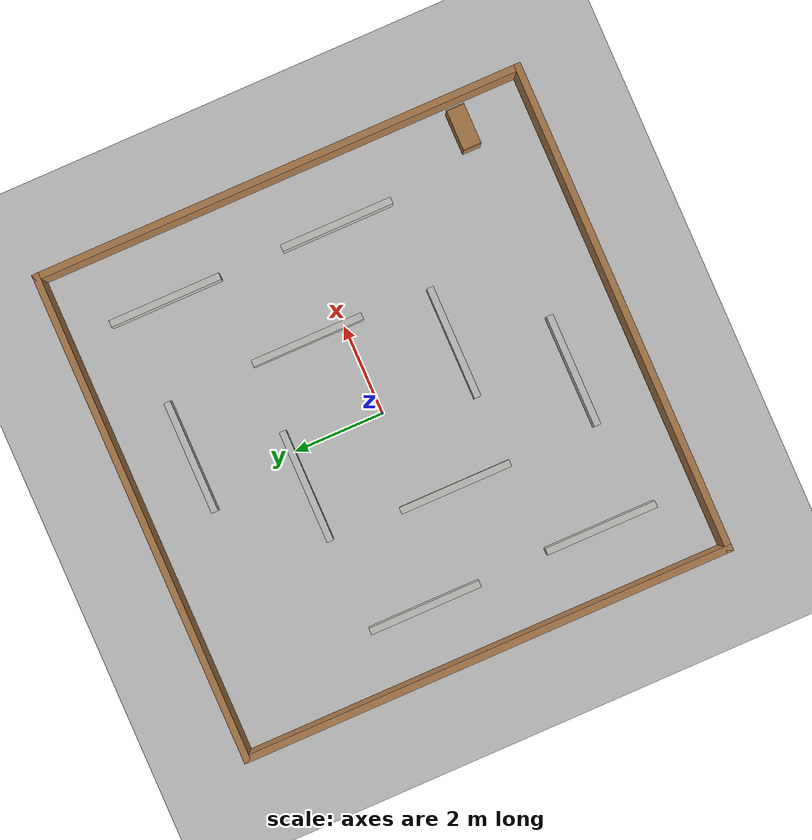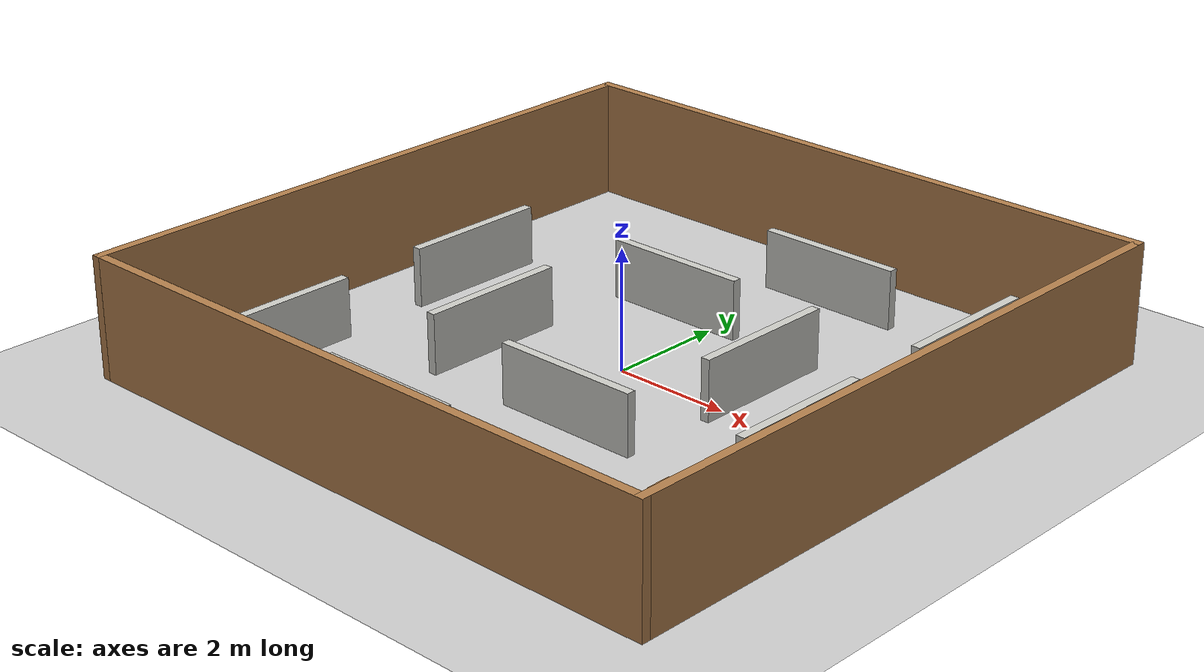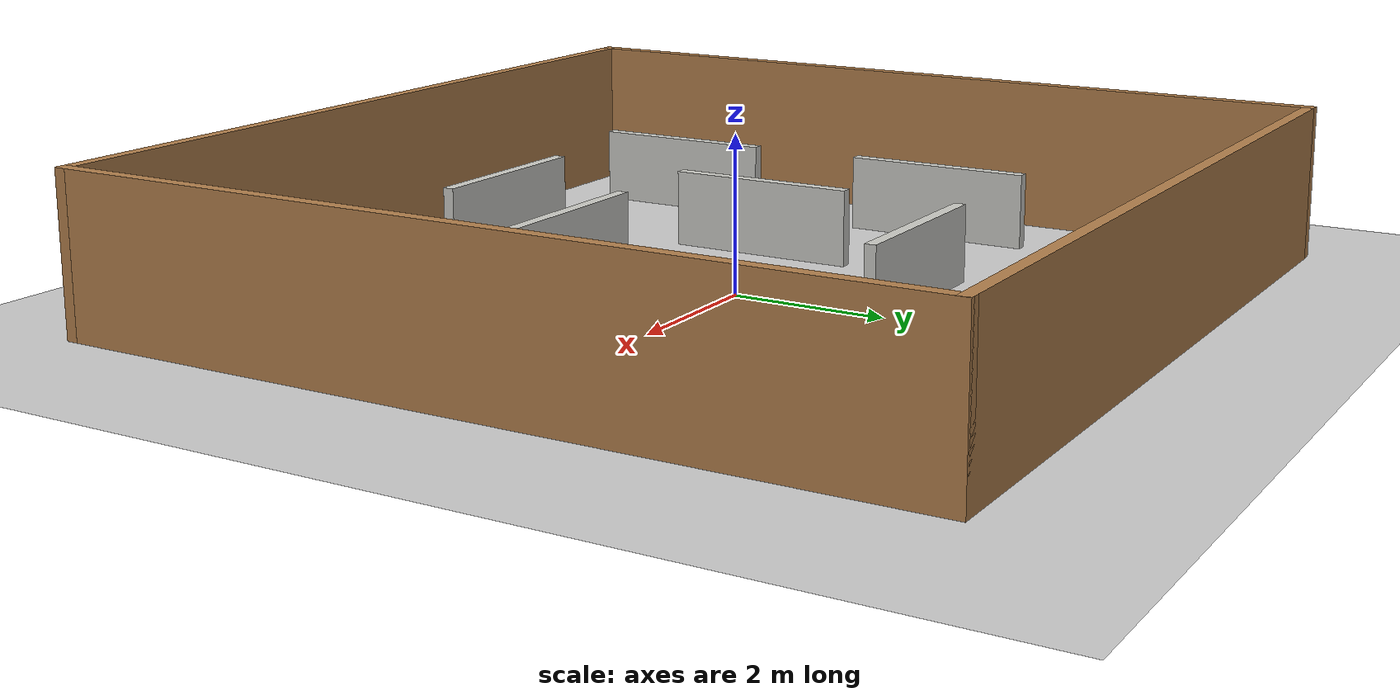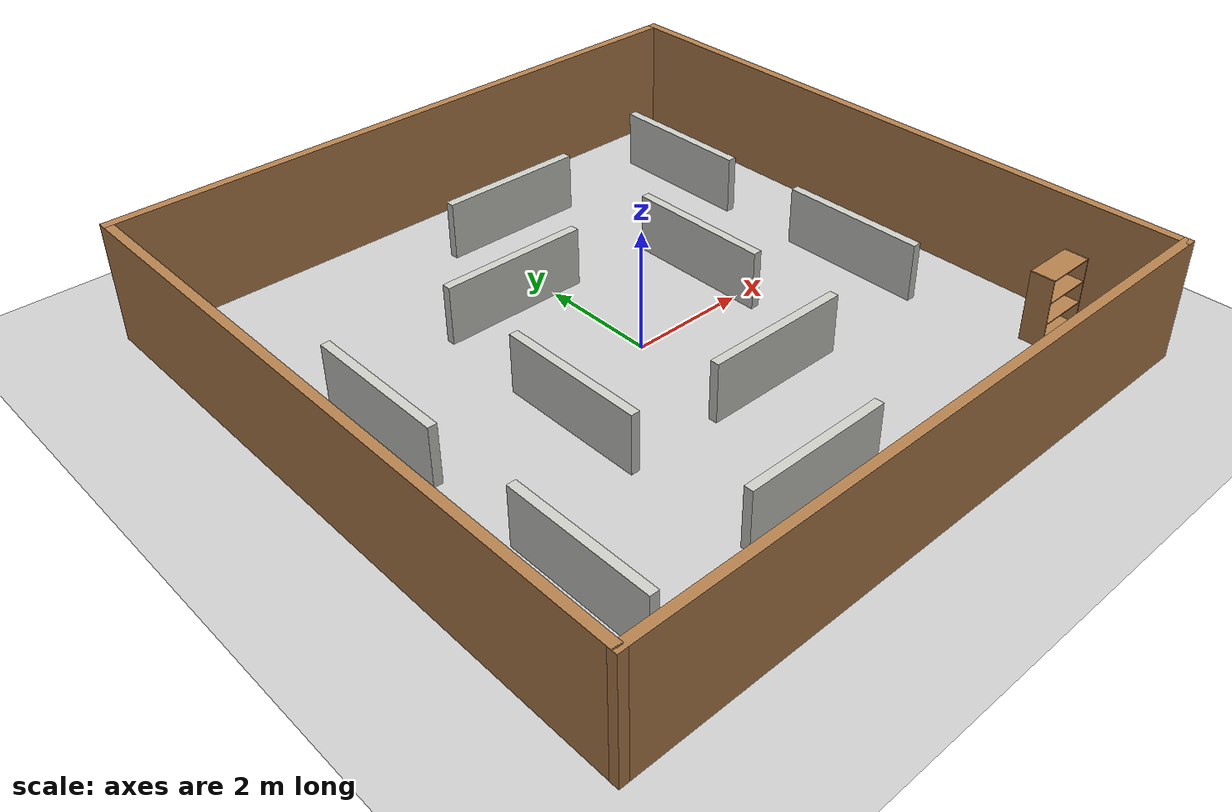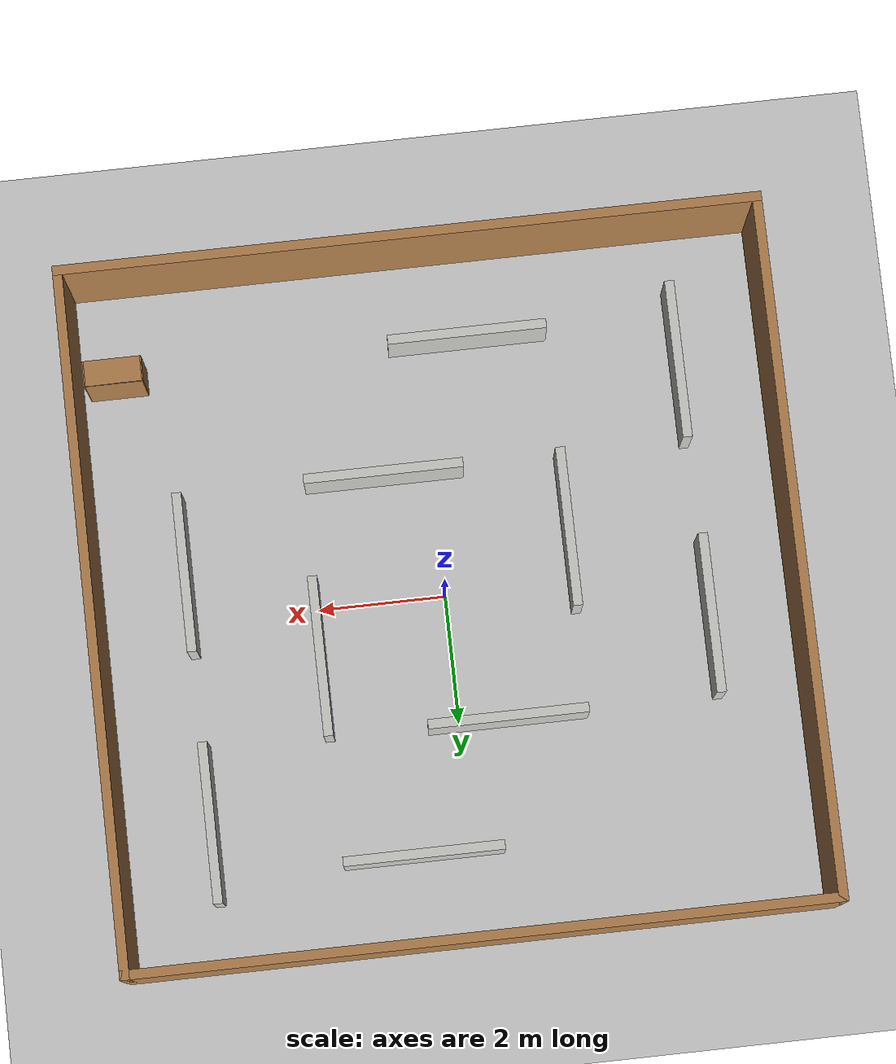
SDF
<sdf version="1.7">
 <world name="default">
  <light name="sun" type="directional">
   <pose>0 0 10 0 -0 0</pose>
   <diffuse>0.8 0.8 0.8 1</diffuse>
   <specular>0.1 0.1 0.1 1</specular>
   <attenuation>
    <range>1000</range>
    <constant>0.9</constant>
    <linear>0.01</linear>
    <quadratic>0.001</quadratic>
   </attenuation>
   <direction>-0.5 0.5 -1</direction>
   <spot><inner_angle>0</inner_angle><outer_angle>0</outer_angle><falloff>0</falloff></spot>
  </light>
  <model name="ground_plane">
   <static>1</static>
   <link name="link">
    <collision name="collision">
     <geometry><plane><normal>0 0 1</normal><size>100 100</size></plane></geometry>
     <surface><friction><ode><mu>100</mu><mu2>50</mu2></ode></friction></surface>
    </collision>
    <visual name="visual">
     <cast_shadows>0</cast_shadows>
     <geometry><plane><normal>0 0 1</normal><size>100 100</size></plane></geometry>
     <material>
      <script><uri>file://media/materials/scripts/gazebo.material</uri><name>Gazebo/Grey</name></script>
     </material>
    </visual>
   </link>
  </model>
  <gravity>0 0 -9.8</gravity>
  <magnetic_field>6e-06 2.3e-05 -4.2e-05</magnetic_field>
  <atmosphere type="adiabatic"/>
  <physics name="default_physics" default="0" type="ode">
   <max_step_size>0.001</max_step_size>
   <real_time_factor>1</real_time_factor>
   <real_time_update_rate>1000</real_time_update_rate>
  </physics>
  <scene><ambient>0.4 0.4 0.4 1</ambient><background>0.7 0.7 0.7 1</background><shadows>1</shadows></scene>
  <spherical_coordinates>
   <surface_model>EARTH_WGS84</surface_model>
   <latitude_deg>0</latitude_deg>
   <longitude_deg>0</longitude_deg>
   <elevation>0</elevation>
   <heading_deg>0</heading_deg>
  </spherical_coordinates>
  <model name="bookshelf">
   <static>1</static>
   <link name="link">
    <inertial><mass>1</mass></inertial>
    <collision name="back">
     <pose>0 0.005 0.6 0 -0 0</pose>
     <geometry><box><size>0.9 0.01 1.2</size></box></geometry>
    </collision>
    <visual name="visual1">
     <pose>0 0.005 0.6 0 -0 0</pose>
     <geometry><box><size>0.9 0.01 1.2</size></box></geometry>
     <material>
      <script><uri>file://media/materials/scripts/gazebo.material</uri><name>Gazebo/Wood</name></script>
     </material>
    </visual>
    <collision name="left_side">
     <pose>0.45 -0.195 0.6 0 -0 0</pose>
     <geometry><box><size>0.02 0.4 1.2</size></box></geometry>
    </collision>
    <visual name="visual2">
     <pose>0.45 -0.195 0.6 0 -0 0</pose>
     <geometry><box><size>0.02 0.4 1.2</size></box></geometry>
     <material>
      <script><uri>file://media/materials/scripts/gazebo.material</uri><name>Gazebo/Wood</name></script>
     </material>
    </visual>
    <collision name="right_side">
     <pose>-0.45 -0.195 0.6 0 -0 0</pose>
     <geometry><box><size>0.02 0.4 1.2</size></box></geometry>
    </collision>
    <visual name="visual3">
     <pose>-0.45 -0.195 0.6 0 -0 0</pose>
     <geometry><box><size>0.02 0.4 1.2</size></box></geometry>
     <material>
      <script><uri>file://media/materials/scripts/gazebo.material</uri><name>Gazebo/Wood</name></script>
     </material>
    </visual>
    <collision name="bottom">
     <pose>0 -0.195 0.03 0 -0 0</pose>
     <geometry><box><size>0.88 0.4 0.06</size></box></geometry>
    </collision>
    <visual name="visual4">
     <pose>0 -0.195 0.03 0 -0 0</pose>
     <geometry><box><size>0.88 0.4 0.06</size></box></geometry>
     <material>
      <script><uri>file://media/materials/scripts/gazebo.material</uri><name>Gazebo/Wood</name></script>
     </material>
    </visual>
    <collision name="top">
     <pose>0 -0.195 1.19 0 -0 0</pose>
     <geometry><box><size>0.88 0.4 0.02</size></box></geometry>
    </collision>
    <visual name="visual5">
     <pose>0 -0.195 1.19 0 -0 0</pose>
     <geometry><box><size>0.88 0.4 0.02</size></box></geometry>
     <material>
      <script><uri>file://media/materials/scripts/gazebo.material</uri><name>Gazebo/Wood</name></script>
     </material>
    </visual>
    <collision name="low_shelf">
     <pose>0 -0.195 0.43 0 -0 0</pose>
     <geometry><box><size>0.88 0.4 0.02</size></box></geometry>
    </collision>
    <visual name="visual6">
     <pose>0 -0.195 0.43 0 -0 0</pose>
     <geometry><box><size>0.88 0.4 0.02</size></box></geometry>
     <material>
      <script><uri>file://media/materials/scripts/gazebo.material</uri><name>Gazebo/Wood</name></script>
     </material>
    </visual>
    <collision name="high_shelf">
     <pose>0 -0.195 0.8 0 -0 0</pose>
     <geometry><box><size>0.88 0.4 0.02</size></box></geometry>
    </collision>
    <visual name="visual7">
     <pose>0 -0.195 0.8 0 -0 0</pose>
     <geometry><box><size>0.88 0.4 0.02</size></box></geometry>
     <material>
      <script><uri>file://media/materials/scripts/gazebo.material</uri><name>Gazebo/Wood</name></script>
     </material>
    </visual>
   </link>
   <pose>4.78412 -3.73836 0 0 -0 0</pose>
  </model>
  <model name="box">
   <link name="Wall_11_clone_0_clone_0">
    <pose>-0.755578 2.06366 0 0 -0 0</pose>
    <visual name="Wall_11_Visual">
     <pose>0 0 0.5 0 -0 0</pose>
     <geometry><box><size>2.5 0.15 1</size></box></geometry>
     <material>
      <script><uri>file://media/materials/scripts/gazebo.material</uri><name>Gazebo/CeilingTiled</name></script>
      <ambient>1 1 1 1</ambient>
      <diffuse>1 1 1 1</diffuse>
      <specular>0 0 0 1</specular>
      <emissive>0 0 0 1</emissive>
      <shader type="pixel"/>
     </material>
     <meta><layer>0</layer></meta>
    </visual>
    <collision name="Wall_11_Collision">
     <pose>0 0 0.5 0 -0 0</pose>
     <geometry><box><size>2.5 0.15 1</size></box></geometry>
     <surface>
      <friction>
       <ode><mu>1</mu><mu2>1</mu2><fdir1>0 0 0</fdir1><slip1>0</slip1><slip2>0</slip2></ode>
       <torsional>
        <coefficient>1</coefficient>
        <patch_radius>0</patch_radius>
        <surface_radius>0</surface_radius>
        <use_patch_radius>1</use_patch_radius>
        <ode><slip>0</slip></ode>
       </torsional>
      </friction>
      <bounce><restitution_coefficient>0</restitution_coefficient><threshold>1e+06</threshold></bounce>
      <contact>
       <collide_without_contact>0</collide_without_contact>
       <collide_without_contact_bitmask>1</collide_without_contact_bitmask>
       <collide_bitmask>1</collide_bitmask>
       <ode>
        <soft_cfm>0</soft_cfm>
        <soft_erp>0.2</soft_erp>
        <kp>1e+13</kp>
        <kd>1</kd>
        <max_vel>0.01</max_vel>
        <min_depth>0</min_depth>
       </ode>
       <bullet>
        <split_impulse>1</split_impulse>
        <split_impulse_penetration_threshold>-0.01</split_impulse_penetration_threshold>
        <soft_cfm>0</soft_cfm>
        <soft_erp>0.2</soft_erp>
        <kp>1e+13</kp>
        <kd>1</kd>
       </bullet>
      </contact>
     </surface>
    </collision>
   </link>
   <link name="Wall_11_clone_0_clone_0_clone">
    <pose>-0.773416 -4.00743 0 0 -0 0</pose>
    <visual name="Wall_11_Visual">
     <pose>0 0 0.5 0 -0 0</pose>
     <geometry><box><size>2.5 0.15 1</size></box></geometry>
     <material>
      <script><uri>file://media/materials/scripts/gazebo.material</uri><name>Gazebo/CeilingTiled</name></script>
      <ambient>1 1 1 1</ambient>
      <diffuse>1 1 1 1</diffuse>
      <specular>0 0 0 1</specular>
      <emissive>0 0 0 1</emissive>
      <shader type="pixel"/>
     </material>
     <meta><layer>0</layer></meta>
    </visual>
    <collision name="Wall_11_Collision">
     <pose>0 0 0.5 0 -0 0</pose>
     <geometry><box><size>2.5 0.15 1</size></box></geometry>
     <surface>
      <friction>
       <ode><mu>1</mu><mu2>1</mu2><fdir1>0 0 0</fdir1><slip1>0</slip1><slip2>0</slip2></ode>
       <torsional>
        <coefficient>1</coefficient>
        <patch_radius>0</patch_radius>
        <surface_radius>0</surface_radius>
        <use_patch_radius>1</use_patch_radius>
        <ode><slip>0</slip></ode>
       </torsional>
      </friction>
      <bounce><restitution_coefficient>0</restitution_coefficient><threshold>1e+06</threshold></bounce>
      <contact>
       <collide_without_contact>0</collide_without_contact>
       <collide_without_contact_bitmask>1</collide_without_contact_bitmask>
       <collide_bitmask>1</collide_bitmask>
       <ode>
        <soft_cfm>0</soft_cfm>
        <soft_erp>0.2</soft_erp>
        <kp>1e+13</kp>
        <kd>1</kd>
        <max_vel>0.01</max_vel>
        <min_depth>0</min_depth>
       </ode>
       <bullet>
        <split_impulse>1</split_impulse>
        <split_impulse_penetration_threshold>-0.01</split_impulse_penetration_threshold>
        <soft_cfm>0</soft_cfm>
        <soft_erp>0.2</soft_erp>
        <kp>1e+13</kp>
        <kd>1</kd>
       </bullet>
      </contact>
     </surface>
    </collision>
   </link>
   <link name="Wall_11_clone_0_clone_0_clone_0">
    <pose>0.765555 4.02606 0 0 -0 0</pose>
    <visual name="Wall_11_Visual">
     <pose>0 0 0.5 0 -0 0</pose>
     <geometry><box><size>2.5 0.15 1</size></box></geometry>
     <material>
      <script><uri>file://media/materials/scripts/gazebo.material</uri><name>Gazebo/CeilingTiled</name></script>
      <ambient>1 1 1 1</ambient>
      <diffuse>1 1 1 1</diffuse>
      <specular>0 0 0 1</specular>
      <emissive>0 0 0 1</emissive>
      <shader type="pixel"/>
     </material>
     <meta><layer>0</layer></meta>
    </visual>
    <collision name="Wall_11_Collision">
     <pose>0 0 0.5 0 -0 0</pose>
     <geometry><box><size>2.5 0.15 1</size></box></geometry>
     <surface>
      <friction>
       <ode><mu>1</mu><mu2>1</mu2><fdir1>0 0 0</fdir1><slip1>0</slip1><slip2>0</slip2></ode>
       <torsional>
        <coefficient>1</coefficient>
        <patch_radius>0</patch_radius>
        <surface_radius>0</surface_radius>
        <use_patch_radius>1</use_patch_radius>
        <ode><slip>0</slip></ode>
       </torsional>
      </friction>
      <bounce><restitution_coefficient>0</restitution_coefficient><threshold>1e+06</threshold></bounce>
      <contact>
       <collide_without_contact>0</collide_without_contact>
       <collide_without_contact_bitmask>1</collide_without_contact_bitmask>
       <collide_bitmask>1</collide_bitmask>
       <ode>
        <soft_cfm>0</soft_cfm>
        <soft_erp>0.2</soft_erp>
        <kp>1e+13</kp>
        <kd>1</kd>
        <max_vel>0.01</max_vel>
        <min_depth>0</min_depth>
       </ode>
       <bullet>
        <split_impulse>1</split_impulse>
        <split_impulse_penetration_threshold>-0.01</split_impulse_penetration_threshold>
        <soft_cfm>0</soft_cfm>
        <soft_erp>0.2</soft_erp>
        <kp>1e+13</kp>
        <kd>1</kd>
       </bullet>
      </contact>
     </surface>
    </collision>
   </link>
   <link name="Wall_11_clone_0_clone_clone">
    <pose>0.762253 -1.95348 0 0 -0 0</pose>
    <visual name="Wall_11_Visual">
     <pose>0 0 0.5 0 -0 0</pose>
     <geometry><box><size>2.5 0.15 1</size></box></geometry>
     <material>
      <script><uri>file://media/materials/scripts/gazebo.material</uri><name>Gazebo/CeilingTiled</name></script>
      <ambient>1 1 1 1</ambient>
      <diffuse>1 1 1 1</diffuse>
      <specular>0 0 0 1</specular>
      <emissive>0 0 0 1</emissive>
      <shader type="pixel"/>
     </material>
     <meta><layer>0</layer></meta>
    </visual>
    <collision name="Wall_11_Collision">
     <pose>0 0 0.5 0 -0 0</pose>
     <geometry><box><size>2.5 0.15 1</size></box></geometry>
     <surface>
      <friction>
       <ode><mu>1</mu><mu2>1</mu2><fdir1>0 0 0</fdir1><slip1>0</slip1><slip2>0</slip2></ode>
       <torsional>
        <coefficient>1</coefficient>
        <patch_radius>0</patch_radius>
        <surface_radius>0</surface_radius>
        <use_patch_radius>1</use_patch_radius>
        <ode><slip>0</slip></ode>
       </torsional>
      </friction>
      <bounce><restitution_coefficient>0</restitution_coefficient><threshold>1e+06</threshold></bounce>
      <contact>
       <collide_without_contact>0</collide_without_contact>
       <collide_without_contact_bitmask>1</collide_without_contact_bitmask>
       <collide_bitmask>1</collide_bitmask>
       <ode>
        <soft_cfm>0</soft_cfm>
        <soft_erp>0.2</soft_erp>
        <kp>1e+13</kp>
        <kd>1</kd>
        <max_vel>0.01</max_vel>
        <min_depth>0</min_depth>
       </ode>
       <bullet>
        <split_impulse>1</split_impulse>
        <split_impulse_penetration_threshold>-0.01</split_impulse_penetration_threshold>
        <soft_cfm>0</soft_cfm>
        <soft_erp>0.2</soft_erp>
        <kp>1e+13</kp>
        <kd>1</kd>
       </bullet>
      </contact>
     </surface>
    </collision>
   </link>
   <link name="Wall_29_clone_clone_clone_clone">
    <pose>-2.01461 -0.7757 0 0 -0 1.5708</pose>
    <inertial>
     <mass>1</mass>
     <inertia><ixx>1</ixx><ixy>0</ixy><ixz>0</ixz><iyy>1</iyy><iyz>0</iyz><izz>1</izz></inertia>
    </inertial>
    <visual name="Wall_29_Visual">
     <pose>0 0 0.5 0 -0 0</pose>
     <geometry><box><size>2.5 0.15 1</size></box></geometry>
     <material>
      <script><uri>file://media/materials/scripts/gazebo.material</uri><name>Gazebo/CeilingTiled</name></script>
      <ambient>1 1 1 1</ambient>
      <diffuse>1 1 1 1</diffuse>
      <specular>0 0 0 1</specular>
      <emissive>0 0 0 1</emissive>
      <shader type="pixel"><normal_map>__default__</normal_map></shader>
     </material>
     <meta><layer>0</layer></meta>
    </visual>
    <collision name="Wall_29_Collision">
     <pose>0 0 0.5 0 -0 0</pose>
     <geometry><box><size>2.5 0.15 1</size></box></geometry>
     <surface>
      <friction>
       <ode><mu>1</mu><mu2>1</mu2><fdir1>0 0 0</fdir1><slip1>0</slip1><slip2>0</slip2></ode>
       <torsional>
        <coefficient>1</coefficient>
        <patch_radius>0</patch_radius>
        <surface_radius>0</surface_radius>
        <use_patch_radius>1</use_patch_radius>
        <ode><slip>0</slip></ode>
       </torsional>
      </friction>
      <bounce><restitution_coefficient>0</restitution_coefficient><threshold>1e+06</threshold></bounce>
      <contact>
       <collide_without_contact>0</collide_without_contact>
       <collide_without_contact_bitmask>1</collide_without_contact_bitmask>
       <collide_bitmask>1</collide_bitmask>
       <ode>
        <soft_cfm>0</soft_cfm>
        <soft_erp>0.2</soft_erp>
        <kp>1e+13</kp>
        <kd>1</kd>
        <max_vel>0.01</max_vel>
        <min_depth>0</min_depth>
       </ode>
       <bullet>
        <split_impulse>1</split_impulse>
        <split_impulse_penetration_threshold>-0.01</split_impulse_penetration_threshold>
        <soft_cfm>0</soft_cfm>
        <soft_erp>0.2</soft_erp>
        <kp>1e+13</kp>
        <kd>1</kd>
       </bullet>
      </contact>
     </surface>
    </collision>
   </link>
   <link name="Wall_29_clone_clone_clone_clone_clone">
    <pose>2.03476 0.824469 0 0 -0 1.5708</pose>
    <inertial>
     <mass>1</mass>
     <inertia><ixx>1</ixx><ixy>0</ixy><ixz>0</ixz><iyy>1</iyy><iyz>0</iyz><izz>1</izz></inertia>
    </inertial>
    <visual name="Wall_29_Visual">
     <pose>0 0 0.5 0 -0 0</pose>
     <geometry><box><size>2.5 0.15 1</size></box></geometry>
     <material>
      <script><uri>file://media/materials/scripts/gazebo.material</uri><name>Gazebo/CeilingTiled</name></script>
      <ambient>1 1 1 1</ambient>
      <diffuse>1 1 1 1</diffuse>
      <specular>0 0 0 1</specular>
      <emissive>0 0 0 1</emissive>
      <shader type="pixel"><normal_map>__default__</normal_map></shader>
     </material>
     <meta><layer>0</layer></meta>
    </visual>
    <collision name="Wall_29_Collision">
     <pose>0 0 0.5 0 -0 0</pose>
     <geometry><box><size>2.5 0.15 1</size></box></geometry>
     <surface>
      <friction>
       <ode><mu>1</mu><mu2>1</mu2><fdir1>0 0 0</fdir1><slip1>0</slip1><slip2>0</slip2></ode>
       <torsional>
        <coefficient>1</coefficient>
        <patch_radius>0</patch_radius>
        <surface_radius>0</surface_radius>
        <use_patch_radius>1</use_patch_radius>
        <ode><slip>0</slip></ode>
       </torsional>
      </friction>
      <bounce><restitution_coefficient>0</restitution_coefficient><threshold>1e+06</threshold></bounce>
      <contact>
       <collide_without_contact>0</collide_without_contact>
       <collide_without_contact_bitmask>1</collide_without_contact_bitmask>
       <collide_bitmask>1</collide_bitmask>
       <ode>
        <soft_cfm>0</soft_cfm>
        <soft_erp>0.2</soft_erp>
        <kp>1e+13</kp>
        <kd>1</kd>
        <max_vel>0.01</max_vel>
        <min_depth>0</min_depth>
       </ode>
       <bullet>
        <split_impulse>1</split_impulse>
        <split_impulse_penetration_threshold>-0.01</split_impulse_penetration_threshold>
        <soft_cfm>0</soft_cfm>
        <soft_erp>0.2</soft_erp>
        <kp>1e+13</kp>
        <kd>1</kd>
       </bullet>
      </contact>
     </surface>
    </collision>
   </link>
   <link name="Wall_29_clone_clone_clone_clone_clone_clone">
    <pose>3.99761 -0.70216 0 0 -0 1.5708</pose>
    <inertial>
     <mass>1</mass>
     <inertia><ixx>1</ixx><ixy>0</ixy><ixz>0</ixz><iyy>1</iyy><iyz>0</iyz><izz>1</izz></inertia>
    </inertial>
    <visual name="Wall_29_Visual">
     <pose>0 0 0.5 0 -0 0</pose>
     <geometry><box><size>2.5 0.15 1</size></box></geometry>
     <material>
      <script><uri>file://media/materials/scripts/gazebo.material</uri><name>Gazebo/CeilingTiled</name></script>
      <ambient>1 1 1 1</ambient>
      <diffuse>1 1 1 1</diffuse>
      <specular>0 0 0 1</specular>
      <emissive>0 0 0 1</emissive>
      <shader type="pixel"><normal_map>__default__</normal_map></shader>
     </material>
     <meta><layer>0</layer></meta>
    </visual>
    <collision name="Wall_29_Collision">
     <pose>0 0 0.5 0 -0 0</pose>
     <geometry><box><size>2.5 0.15 1</size></box></geometry>
     <surface>
      <friction>
       <ode><mu>1</mu><mu2>1</mu2><fdir1>0 0 0</fdir1><slip1>0</slip1><slip2>0</slip2></ode>
       <torsional>
        <coefficient>1</coefficient>
        <patch_radius>0</patch_radius>
        <surface_radius>0</surface_radius>
        <use_patch_radius>1</use_patch_radius>
        <ode><slip>0</slip></ode>
       </torsional>
      </friction>
      <bounce><restitution_coefficient>0</restitution_coefficient><threshold>1e+06</threshold></bounce>
      <contact>
       <collide_without_contact>0</collide_without_contact>
       <collide_without_contact_bitmask>1</collide_without_contact_bitmask>
       <collide_bitmask>1</collide_bitmask>
       <ode>
        <soft_cfm>0</soft_cfm>
        <soft_erp>0.2</soft_erp>
        <kp>1e+13</kp>
        <kd>1</kd>
        <max_vel>0.01</max_vel>
        <min_depth>0</min_depth>
       </ode>
       <bullet>
        <split_impulse>1</split_impulse>
        <split_impulse_penetration_threshold>-0.01</split_impulse_penetration_threshold>
        <soft_cfm>0</soft_cfm>
        <soft_erp>0.2</soft_erp>
        <kp>1e+13</kp>
        <kd>1</kd>
       </bullet>
      </contact>
     </surface>
    </collision>
   </link>
   <link name="Wall_29_clone_clone_clone_clone_clone_clone_0">
    <pose>-4.06551 0.808425 0 0 -0 1.5708</pose>
    <inertial>
     <mass>1</mass>
     <inertia><ixx>1</ixx><ixy>0</ixy><ixz>0</ixz><iyy>1</iyy><iyz>0</iyz><izz>1</izz></inertia>
    </inertial>
    <visual name="Wall_29_Visual">
     <pose>0 0 0.5 0 -0 0</pose>
     <geometry><box><size>2.5 0.15 1</size></box></geometry>
     <material>
      <script><uri>file://media/materials/scripts/gazebo.material</uri><name>Gazebo/CeilingTiled</name></script>
      <ambient>1 1 1 1</ambient>
      <diffuse>1 1 1 1</diffuse>
      <specular>0 0 0 1</specular>
      <emissive>0 0 0 1</emissive>
      <shader type="pixel"><normal_map>__default__</normal_map></shader>
     </material>
     <meta><layer>0</layer></meta>
    </visual>
    <collision name="Wall_29_Collision">
     <pose>0 0 0.5 0 -0 0</pose>
     <geometry><box><size>2.5 0.15 1</size></box></geometry>
     <surface>
      <friction>
       <ode><mu>1</mu><mu2>1</mu2><fdir1>0 0 0</fdir1><slip1>0</slip1><slip2>0</slip2></ode>
       <torsional>
        <coefficient>1</coefficient>
        <patch_radius>0</patch_radius>
        <surface_radius>0</surface_radius>
        <use_patch_radius>1</use_patch_radius>
        <ode><slip>0</slip></ode>
       </torsional>
      </friction>
      <bounce><restitution_coefficient>0</restitution_coefficient><threshold>1e+06</threshold></bounce>
      <contact>
       <collide_without_contact>0</collide_without_contact>
       <collide_without_contact_bitmask>1</collide_without_contact_bitmask>
       <collide_bitmask>1</collide_bitmask>
       <ode>
        <soft_cfm>0</soft_cfm>
        <soft_erp>0.2</soft_erp>
        <kp>1e+13</kp>
        <kd>1</kd>
        <max_vel>0.01</max_vel>
        <min_depth>0</min_depth>
       </ode>
       <bullet>
        <split_impulse>1</split_impulse>
        <split_impulse_penetration_threshold>-0.01</split_impulse_penetration_threshold>
        <soft_cfm>0</soft_cfm>
        <soft_erp>0.2</soft_erp>
        <kp>1e+13</kp>
        <kd>1</kd>
       </bullet>
      </contact>
     </surface>
    </collision>
   </link>
   <link name="Wall_29_clone_clone_clone_clone_clone_clone_1">
    <pose>-4.01323 -3.2197 0 0 -0 1.5708</pose>
    <inertial>
     <mass>1</mass>
     <inertia><ixx>1</ixx><ixy>0</ixy><ixz>0</ixz><iyy>1</iyy><iyz>0</iyz><izz>1</izz></inertia>
    </inertial>
    <visual name="Wall_29_Visual">
     <pose>0 0 0.5 0 -0 0</pose>
     <geometry><box><size>2.5 0.15 1</size></box></geometry>
     <material>
      <script><uri>file://media/materials/scripts/gazebo.material</uri><name>Gazebo/CeilingTiled</name></script>
      <ambient>1 1 1 1</ambient>
      <diffuse>1 1 1 1</diffuse>
      <specular>0 0 0 1</specular>
      <emissive>0 0 0 1</emissive>
      <shader type="pixel"><normal_map>__default__</normal_map></shader>
     </material>
     <meta><layer>0</layer></meta>
    </visual>
    <collision name="Wall_29_Collision">
     <pose>0 0 0.5 0 -0 0</pose>
     <geometry><box><size>2.5 0.15 1</size></box></geometry>
     <surface>
      <friction>
       <ode><mu>1</mu><mu2>1</mu2><fdir1>0 0 0</fdir1><slip1>0</slip1><slip2>0</slip2></ode>
       <torsional>
        <coefficient>1</coefficient>
        <patch_radius>0</patch_radius>
        <surface_radius>0</surface_radius>
        <use_patch_radius>1</use_patch_radius>
        <ode><slip>0</slip></ode>
       </torsional>
      </friction>
      <bounce><restitution_coefficient>0</restitution_coefficient><threshold>1e+06</threshold></bounce>
      <contact>
       <collide_without_contact>0</collide_without_contact>
       <collide_without_contact_bitmask>1</collide_without_contact_bitmask>
       <collide_bitmask>1</collide_bitmask>
       <ode>
        <soft_cfm>0</soft_cfm>
        <soft_erp>0.2</soft_erp>
        <kp>1e+13</kp>
        <kd>1</kd>
        <max_vel>0.01</max_vel>
        <min_depth>0</min_depth>
       </ode>
       <bullet>
        <split_impulse>1</split_impulse>
        <split_impulse_penetration_threshold>-0.01</split_impulse_penetration_threshold>
        <soft_cfm>0</soft_cfm>
        <soft_erp>0.2</soft_erp>
        <kp>1e+13</kp>
        <kd>1</kd>
       </bullet>
      </contact>
     </surface>
    </collision>
   </link>
   <link name="Wall_29_clone_clone_clone_clone_clone_clone_2">
    <pose>3.98072 3.20803 0 0 -0 1.5708</pose>
    <inertial>
     <mass>1</mass>
     <inertia><ixx>1</ixx><ixy>0</ixy><ixz>0</ixz><iyy>1</iyy><iyz>0</iyz><izz>1</izz></inertia>
    </inertial>
    <visual name="Wall_29_Visual">
     <pose>0 0 0.5 0 -0 0</pose>
     <geometry><box><size>2.5 0.15 1</size></box></geometry>
     <material>
      <script><uri>file://media/materials/scripts/gazebo.material</uri><name>Gazebo/CeilingTiled</name></script>
      <ambient>1 1 1 1</ambient>
      <diffuse>1 1 1 1</diffuse>
      <specular>0 0 0 1</specular>
      <emissive>0 0 0 1</emissive>
      <shader type="pixel"><normal_map>__default__</normal_map></shader>
     </material>
     <meta><layer>0</layer></meta>
    </visual>
    <collision name="Wall_29_Collision">
     <pose>0 0 0.5 0 -0 0</pose>
     <geometry><box><size>2.5 0.15 1</size></box></geometry>
     <surface>
      <friction>
       <ode><mu>1</mu><mu2>1</mu2><fdir1>0 0 0</fdir1><slip1>0</slip1><slip2>0</slip2></ode>
       <torsional>
        <coefficient>1</coefficient>
        <patch_radius>0</patch_radius>
        <surface_radius>0</surface_radius>
        <use_patch_radius>1</use_patch_radius>
        <ode><slip>0</slip></ode>
       </torsional>
      </friction>
      <bounce><restitution_coefficient>0</restitution_coefficient><threshold>1e+06</threshold></bounce>
      <contact>
       <collide_without_contact>0</collide_without_contact>
       <collide_without_contact_bitmask>1</collide_without_contact_bitmask>
       <collide_bitmask>1</collide_bitmask>
       <ode>
        <soft_cfm>0</soft_cfm>
        <soft_erp>0.2</soft_erp>
        <kp>1e+13</kp>
        <kd>1</kd>
        <max_vel>0.01</max_vel>
        <min_depth>0</min_depth>
       </ode>
       <bullet>
        <split_impulse>1</split_impulse>
        <split_impulse_penetration_threshold>-0.01</split_impulse_penetration_threshold>
        <soft_cfm>0</soft_cfm>
        <soft_erp>0.2</soft_erp>
        <kp>1e+13</kp>
        <kd>1</kd>
       </bullet>
      </contact>
     </surface>
    </collision>
   </link>
   <link name="Wall_6">
    <pose>0 5.425 0 0 -0 0</pose>
    <visual name="Wall_6_Visual">
     <pose>0 0 1 0 -0 0</pose>
     <geometry><box><size>11 0.15 2</size></box></geometry>
     <material>
      <script><uri>file://media/materials/scripts/gazebo.material</uri><name>Gazebo/Wood</name></script>
      <ambient>1 1 1 1</ambient>
      <diffuse>1 1 1 1</diffuse>
      <specular>0.2 0.2 0.2 1</specular>
      <emissive>0 0 0 1</emissive>
      <shader type="pixel"/>
     </material>
     <meta><layer>0</layer></meta>
    </visual>
    <collision name="Wall_6_Collision">
     <pose>0 0 1 0 -0 0</pose>
     <geometry><box><size>11 0.15 2</size></box></geometry>
     <surface>
      <friction>
       <ode><mu>1</mu><mu2>1</mu2><fdir1>0 0 0</fdir1><slip1>0</slip1><slip2>0</slip2></ode>
       <torsional>
        <coefficient>1</coefficient>
        <patch_radius>0</patch_radius>
        <surface_radius>0</surface_radius>
        <use_patch_radius>1</use_patch_radius>
        <ode><slip>0</slip></ode>
       </torsional>
      </friction>
      <bounce><restitution_coefficient>0</restitution_coefficient><threshold>1e+06</threshold></bounce>
      <contact>
       <collide_without_contact>0</collide_without_contact>
       <collide_without_contact_bitmask>1</collide_without_contact_bitmask>
       <collide_bitmask>1</collide_bitmask>
       <ode>
        <soft_cfm>0</soft_cfm>
        <soft_erp>0.2</soft_erp>
        <kp>1e+13</kp>
        <kd>1</kd>
        <max_vel>0.01</max_vel>
        <min_depth>0</min_depth>
       </ode>
       <bullet>
        <split_impulse>1</split_impulse>
        <split_impulse_penetration_threshold>-0.01</split_impulse_penetration_threshold>
        <soft_cfm>0</soft_cfm>
        <soft_erp>0.2</soft_erp>
        <kp>1e+13</kp>
        <kd>1</kd>
       </bullet>
      </contact>
     </surface>
    </collision>
   </link>
   <link name="Wall_7">
    <pose>5.425 0 0 0 0 -1.5708</pose>
    <visual name="Wall_7_Visual">
     <pose>0 0 1 0 -0 0</pose>
     <geometry><box><size>11 0.15 2</size></box></geometry>
     <material>
      <script><uri>file://media/materials/scripts/gazebo.material</uri><name>Gazebo/Wood</name></script>
      <ambient>1 1 1 1</ambient>
      <diffuse>1 1 1 1</diffuse>
      <specular>0.2 0.2 0.2 1</specular>
      <emissive>0 0 0 1</emissive>
      <shader type="pixel"/>
     </material>
     <meta><layer>0</layer></meta>
    </visual>
    <collision name="Wall_7_Collision">
     <pose>0 0 1 0 -0 0</pose>
     <geometry><box><size>11 0.15 2</size></box></geometry>
     <surface>
      <friction>
       <ode><mu>1</mu><mu2>1</mu2><fdir1>0 0 0</fdir1><slip1>0</slip1><slip2>0</slip2></ode>
       <torsional>
        <coefficient>1</coefficient>
        <patch_radius>0</patch_radius>
        <surface_radius>0</surface_radius>
        <use_patch_radius>1</use_patch_radius>
        <ode><slip>0</slip></ode>
       </torsional>
      </friction>
      <bounce><restitution_coefficient>0</restitution_coefficient><threshold>1e+06</threshold></bounce>
      <contact>
       <collide_without_contact>0</collide_without_contact>
       <collide_without_contact_bitmask>1</collide_without_contact_bitmask>
       <collide_bitmask>1</collide_bitmask>
       <ode>
        <soft_cfm>0</soft_cfm>
        <soft_erp>0.2</soft_erp>
        <kp>1e+13</kp>
        <kd>1</kd>
        <max_vel>0.01</max_vel>
        <min_depth>0</min_depth>
       </ode>
       <bullet>
        <split_impulse>1</split_impulse>
        <split_impulse_penetration_threshold>-0.01</split_impulse_penetration_threshold>
        <soft_cfm>0</soft_cfm>
        <soft_erp>0.2</soft_erp>
        <kp>1e+13</kp>
        <kd>1</kd>
       </bullet>
      </contact>
     </surface>
    </collision>
   </link>
   <link name="Wall_8">
    <pose>0 -5.425 0 0 -0 3.14159</pose>
    <visual name="Wall_8_Visual">
     <pose>0 0 1 0 -0 0</pose>
     <geometry><box><size>11 0.15 2</size></box></geometry>
     <material>
      <script><uri>file://media/materials/scripts/gazebo.material</uri><name>Gazebo/Wood</name></script>
      <ambient>1 1 1 1</ambient>
      <diffuse>1 1 1 1</diffuse>
      <specular>0.2 0.2 0.2 1</specular>
      <emissive>0 0 0 1</emissive>
      <shader type="pixel"/>
     </material>
     <meta><layer>0</layer></meta>
    </visual>
    <collision name="Wall_8_Collision">
     <pose>0 0 1 0 -0 0</pose>
     <geometry><box><size>11 0.15 2</size></box></geometry>
     <surface>
      <friction>
       <ode><mu>1</mu><mu2>1</mu2><fdir1>0 0 0</fdir1><slip1>0</slip1><slip2>0</slip2></ode>
       <torsional>
        <coefficient>1</coefficient>
        <patch_radius>0</patch_radius>
        <surface_radius>0</surface_radius>
        <use_patch_radius>1</use_patch_radius>
        <ode><slip>0</slip></ode>
       </torsional>
      </friction>
      <bounce><restitution_coefficient>0</restitution_coefficient><threshold>1e+06</threshold></bounce>
      <contact>
       <collide_without_contact>0</collide_without_contact>
       <collide_without_contact_bitmask>1</collide_without_contact_bitmask>
       <collide_bitmask>1</collide_bitmask>
       <ode>
        <soft_cfm>0</soft_cfm>
        <soft_erp>0.2</soft_erp>
        <kp>1e+13</kp>
        <kd>1</kd>
        <max_vel>0.01</max_vel>
        <min_depth>0</min_depth>
       </ode>
       <bullet>
        <split_impulse>1</split_impulse>
        <split_impulse_penetration_threshold>-0.01</split_impulse_penetration_threshold>
        <soft_cfm>0</soft_cfm>
        <soft_erp>0.2</soft_erp>
        <kp>1e+13</kp>
        <kd>1</kd>
       </bullet>
      </contact>
     </surface>
    </collision>
   </link>
   <link name="Wall_9">
    <pose>-5.425 0 0 0 -0 1.5708</pose>
    <visual name="Wall_9_Visual">
     <pose>0 0 1 0 -0 0</pose>
     <geometry><box><size>11 0.15 2</size></box></geometry>
     <material>
      <script><uri>file://media/materials/scripts/gazebo.material</uri><name>Gazebo/Wood</name></script>
      <ambient>1 1 1 1</ambient>
      <diffuse>1 1 1 1</diffuse>
      <specular>0.2 0.2 0.2 1</specular>
      <emissive>0 0 0 1</emissive>
      <shader type="pixel"/>
     </material>
     <meta><layer>0</layer></meta>
    </visual>
    <collision name="Wall_9_Collision">
     <pose>0 0 1 0 -0 0</pose>
     <geometry><box><size>11 0.15 2</size></box></geometry>
     <surface>
      <friction>
       <ode><mu>1</mu><mu2>1</mu2><fdir1>0 0 0</fdir1><slip1>0</slip1><slip2>0</slip2></ode>
       <torsional>
        <coefficient>1</coefficient>
        <patch_radius>0</patch_radius>
        <surface_radius>0</surface_radius>
        <use_patch_radius>1</use_patch_radius>
        <ode><slip>0</slip></ode>
       </torsional>
      </friction>
      <bounce><restitution_coefficient>0</restitution_coefficient><threshold>1e+06</threshold></bounce>
      <contact>
       <collide_without_contact>0</collide_without_contact>
       <collide_without_contact_bitmask>1</collide_without_contact_bitmask>
       <collide_bitmask>1</collide_bitmask>
       <ode>
        <soft_cfm>0</soft_cfm>
        <soft_erp>0.2</soft_erp>
        <kp>1e+13</kp>
        <kd>1</kd>
        <max_vel>0.01</max_vel>
        <min_depth>0</min_depth>
       </ode>
       <bullet>
        <split_impulse>1</split_impulse>
        <split_impulse_penetration_threshold>-0.01</split_impulse_penetration_threshold>
        <soft_cfm>0</soft_cfm>
        <soft_erp>0.2</soft_erp>
        <kp>1e+13</kp>
        <kd>1</kd>
       </bullet>
      </contact>
     </surface>
    </collision>
   </link>
   <static>1</static>
   <pose>0.000564 -0.000118 0 0 -0 0</pose>
  </model>
 </world>
</sdf>
